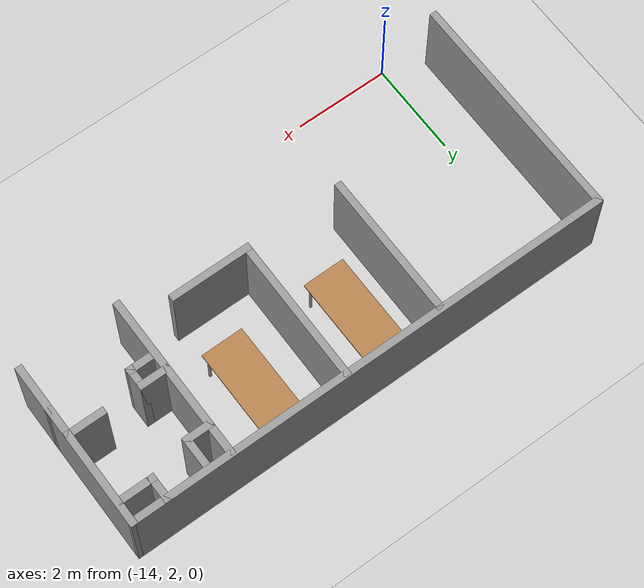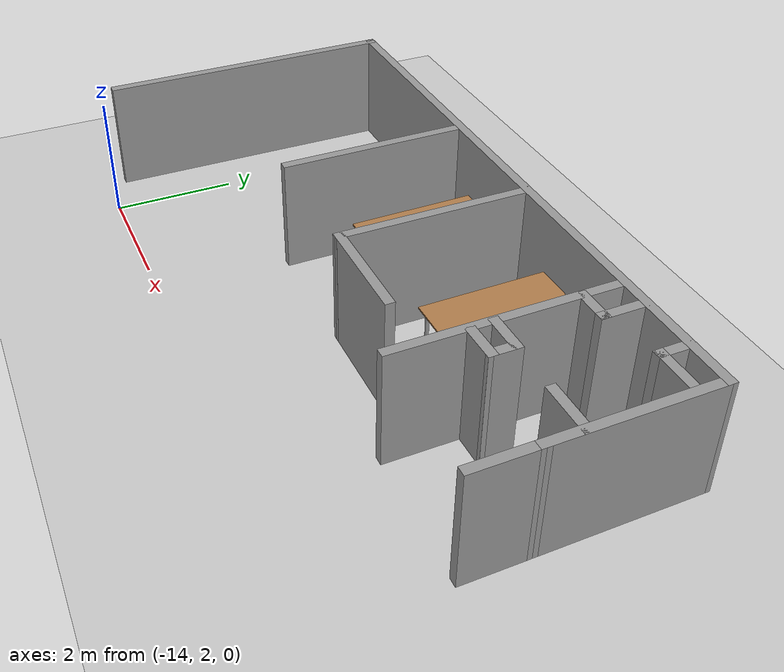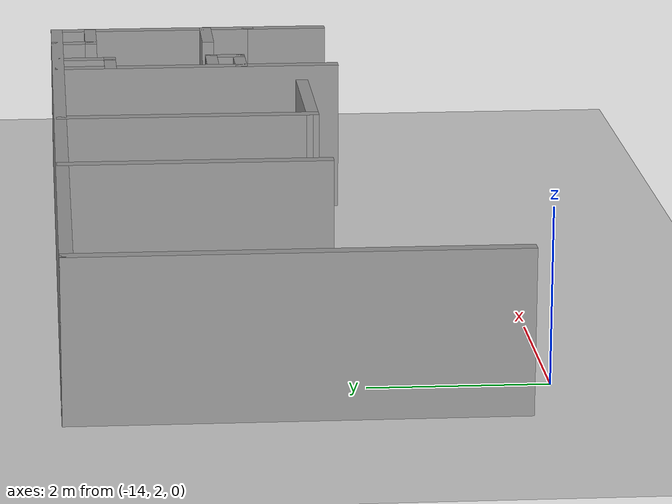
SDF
<sdf version="1.7">
 <world name="default">
  <model name="meeting_room_table_0_clone_clone_clone">
   <link name="link">
    <inertial>
     <inertia><ixx>0</ixx><ixy>0</ixy><ixz>0</ixz><iyy>0</iyy><iyz>0</iyz><izz>0</izz></inertia>
     <mass>0</mass>
    </inertial>
    <visual name="visual1">
     <pose>0 0 0.84 0 -0 0</pose>
     <geometry><box><size>2.07185 0.892487 0.025485</size></box></geometry>
     <material>
      <script><uri>file://media/materials/scripts/gazebo.material</uri><name>Gazebo/Wood</name></script>
      <shader type="pixel"><normal_map>__default__</normal_map></shader>
      <ambient>1 1 1 1</ambient>
      <diffuse>1 1 1 1</diffuse>
      <specular>0.2 0.2 0.2 1</specular>
      <emissive>0 0 0 1</emissive>
     </material>
    </visual>
    <visual name="front_right_leg">
     <pose>0.92 -0.38 0.42 0 -0 0</pose>
     <geometry><cylinder><radius>0.0301928</radius><length>0.822541</length></cylinder></geometry>
     <material>
      <script><uri>file://media/materials/scripts/gazebo.material</uri><name>Gazebo/Grey</name></script>
      <shader type="pixel"><normal_map>__default__</normal_map></shader>
      <ambient>0.3 0.3 0.3 1</ambient>
      <diffuse>0.7 0.7 0.7 1</diffuse>
      <specular>0.01 0.01 0.01 1</specular>
      <emissive>0 0 0 1</emissive>
     </material>
    </visual>
    <visual name="front_left_leg">
     <pose>0.92 0.38 0.42 0 -0 0</pose>
     <geometry><cylinder><radius>0.0301928</radius><length>0.822541</length></cylinder></geometry>
     <material>
      <script><uri>file://media/materials/scripts/gazebo.material</uri><name>Gazebo/Grey</name></script>
      <shader type="pixel"><normal_map>__default__</normal_map></shader>
      <ambient>0.3 0.3 0.3 1</ambient>
      <diffuse>0.7 0.7 0.7 1</diffuse>
      <specular>0.01 0.01 0.01 1</specular>
      <emissive>0 0 0 1</emissive>
     </material>
    </visual>
    <visual name="back_left_leg">
     <pose>-0.92 0.38 0.42 0 -0 0</pose>
     <geometry><cylinder><radius>0.0301928</radius><length>0.822541</length></cylinder></geometry>
     <material>
      <script><uri>file://media/materials/scripts/gazebo.material</uri><name>Gazebo/Grey</name></script>
      <shader type="pixel"><normal_map>__default__</normal_map></shader>
      <ambient>0.3 0.3 0.3 1</ambient>
      <diffuse>0.7 0.7 0.7 1</diffuse>
      <specular>0.01 0.01 0.01 1</specular>
      <emissive>0 0 0 1</emissive>
     </material>
    </visual>
    <visual name="back_right_leg">
     <pose>-0.92 -0.38 0.42 0 -0 0</pose>
     <geometry><cylinder><radius>0.0301928</radius><length>0.822541</length></cylinder></geometry>
     <material>
      <script><uri>file://media/materials/scripts/gazebo.material</uri><name>Gazebo/Grey</name></script>
      <shader type="pixel"><normal_map>__default__</normal_map></shader>
      <ambient>0.3 0.3 0.3 1</ambient>
      <diffuse>0.7 0.7 0.7 1</diffuse>
      <specular>0.01 0.01 0.01 1</specular>
      <emissive>0 0 0 1</emissive>
     </material>
    </visual>
    <collision name="surface">
     <pose>0 0 0.84 0 -0 0</pose>
     <geometry><box><size>2.07185 0.892487 0.025485</size></box></geometry>
     <surface>
      <friction>
       <ode><mu>0.6</mu><mu2>0.6</mu2><fdir1>0 0 0</fdir1><slip1>0</slip1><slip2>0</slip2></ode>
       <torsional>
        <coefficient>1</coefficient>
        <patch_radius>0</patch_radius>
        <surface_radius>0</surface_radius>
        <use_patch_radius>1</use_patch_radius>
        <ode><slip>0</slip></ode>
       </torsional>
      </friction>
      <bounce><restitution_coefficient>0</restitution_coefficient><threshold>1e+06</threshold></bounce>
      <contact>
       <collide_without_contact>0</collide_without_contact>
       <collide_without_contact_bitmask>1</collide_without_contact_bitmask>
       <collide_bitmask>1</collide_bitmask>
       <ode>
        <soft_cfm>0</soft_cfm>
        <soft_erp>0.2</soft_erp>
        <kp>1e+13</kp>
        <kd>1</kd>
        <max_vel>0.01</max_vel>
        <min_depth>0</min_depth>
       </ode>
       <bullet>
        <split_impulse>1</split_impulse>
        <split_impulse_penetration_threshold>-0.01</split_impulse_penetration_threshold>
        <soft_cfm>0</soft_cfm>
        <soft_erp>0.2</soft_erp>
        <kp>1e+13</kp>
        <kd>1</kd>
       </bullet>
      </contact>
     </surface>
    </collision>
    <collision name="front_left_leg">
     <pose>0.92 0.38 0.42 0 -0 0</pose>
     <geometry><cylinder><radius>0.030193</radius><length>0.822541</length></cylinder></geometry>
     <surface>
      <friction>
       <ode><mu>1</mu><mu2>1</mu2><fdir1>0 0 0</fdir1><slip1>0</slip1><slip2>0</slip2></ode>
       <torsional>
        <coefficient>1</coefficient>
        <patch_radius>0</patch_radius>
        <surface_radius>0</surface_radius>
        <use_patch_radius>1</use_patch_radius>
        <ode><slip>0</slip></ode>
       </torsional>
      </friction>
      <bounce><restitution_coefficient>0</restitution_coefficient><threshold>1e+06</threshold></bounce>
      <contact>
       <collide_without_contact>0</collide_without_contact>
       <collide_without_contact_bitmask>1</collide_without_contact_bitmask>
       <collide_bitmask>1</collide_bitmask>
       <ode>
        <soft_cfm>0</soft_cfm>
        <soft_erp>0.2</soft_erp>
        <kp>1e+13</kp>
        <kd>1</kd>
        <max_vel>0.01</max_vel>
        <min_depth>0</min_depth>
       </ode>
       <bullet>
        <split_impulse>1</split_impulse>
        <split_impulse_penetration_threshold>-0.01</split_impulse_penetration_threshold>
        <soft_cfm>0</soft_cfm>
        <soft_erp>0.2</soft_erp>
        <kp>1e+13</kp>
        <kd>1</kd>
       </bullet>
      </contact>
     </surface>
    </collision>
    <collision name="front_right_leg">
     <pose>0.92 -0.38 0.42 0 -0 0</pose>
     <geometry><cylinder><radius>0.030193</radius><length>0.822541</length></cylinder></geometry>
     <surface>
      <friction>
       <ode><mu>1</mu><mu2>1</mu2><fdir1>0 0 0</fdir1><slip1>0</slip1><slip2>0</slip2></ode>
       <torsional>
        <coefficient>1</coefficient>
        <patch_radius>0</patch_radius>
        <surface_radius>0</surface_radius>
        <use_patch_radius>1</use_patch_radius>
        <ode><slip>0</slip></ode>
       </torsional>
      </friction>
      <bounce><restitution_coefficient>0</restitution_coefficient><threshold>1e+06</threshold></bounce>
      <contact>
       <collide_without_contact>0</collide_without_contact>
       <collide_without_contact_bitmask>1</collide_without_contact_bitmask>
       <collide_bitmask>1</collide_bitmask>
       <ode>
        <soft_cfm>0</soft_cfm>
        <soft_erp>0.2</soft_erp>
        <kp>1e+13</kp>
        <kd>1</kd>
        <max_vel>0.01</max_vel>
        <min_depth>0</min_depth>
       </ode>
       <bullet>
        <split_impulse>1</split_impulse>
        <split_impulse_penetration_threshold>-0.01</split_impulse_penetration_threshold>
        <soft_cfm>0</soft_cfm>
        <soft_erp>0.2</soft_erp>
        <kp>1e+13</kp>
        <kd>1</kd>
       </bullet>
      </contact>
     </surface>
    </collision>
    <collision name="back_right_leg">
     <pose>-0.92 -0.38 0.42 0 -0 0</pose>
     <geometry><cylinder><radius>0.030193</radius><length>0.822541</length></cylinder></geometry>
     <surface>
      <friction>
       <ode><mu>1</mu><mu2>1</mu2><fdir1>0 0 0</fdir1><slip1>0</slip1><slip2>0</slip2></ode>
       <torsional>
        <coefficient>1</coefficient>
        <patch_radius>0</patch_radius>
        <surface_radius>0</surface_radius>
        <use_patch_radius>1</use_patch_radius>
        <ode><slip>0</slip></ode>
       </torsional>
      </friction>
      <bounce><restitution_coefficient>0</restitution_coefficient><threshold>1e+06</threshold></bounce>
      <contact>
       <collide_without_contact>0</collide_without_contact>
       <collide_without_contact_bitmask>1</collide_without_contact_bitmask>
       <collide_bitmask>1</collide_bitmask>
       <ode>
        <soft_cfm>0</soft_cfm>
        <soft_erp>0.2</soft_erp>
        <kp>1e+13</kp>
        <kd>1</kd>
        <max_vel>0.01</max_vel>
        <min_depth>0</min_depth>
       </ode>
       <bullet>
        <split_impulse>1</split_impulse>
        <split_impulse_penetration_threshold>-0.01</split_impulse_penetration_threshold>
        <soft_cfm>0</soft_cfm>
        <soft_erp>0.2</soft_erp>
        <kp>1e+13</kp>
        <kd>1</kd>
       </bullet>
      </contact>
     </surface>
    </collision>
    <collision name="back_left_leg">
     <pose>-0.92 0.38 0.42 0 -0 0</pose>
     <geometry><cylinder><radius>0.030193</radius><length>0.822541</length></cylinder></geometry>
     <surface>
      <friction>
       <ode><mu>1</mu><mu2>1</mu2><fdir1>0 0 0</fdir1><slip1>0</slip1><slip2>0</slip2></ode>
       <torsional>
        <coefficient>1</coefficient>
        <patch_radius>0</patch_radius>
        <surface_radius>0</surface_radius>
        <use_patch_radius>1</use_patch_radius>
        <ode><slip>0</slip></ode>
       </torsional>
      </friction>
      <bounce><restitution_coefficient>0</restitution_coefficient><threshold>1e+06</threshold></bounce>
      <contact>
       <collide_without_contact>0</collide_without_contact>
       <collide_without_contact_bitmask>1</collide_without_contact_bitmask>
       <collide_bitmask>1</collide_bitmask>
       <ode>
        <soft_cfm>0</soft_cfm>
        <soft_erp>0.2</soft_erp>
        <kp>1e+13</kp>
        <kd>1</kd>
        <max_vel>0.01</max_vel>
        <min_depth>0</min_depth>
       </ode>
       <bullet>
        <split_impulse>1</split_impulse>
        <split_impulse_penetration_threshold>-0.01</split_impulse_penetration_threshold>
        <soft_cfm>0</soft_cfm>
        <soft_erp>0.2</soft_erp>
        <kp>1e+13</kp>
        <kd>1</kd>
       </bullet>
      </contact>
     </surface>
    </collision>
   </link>
   <static>1</static>
   <pose>-10.2929 6.09368 0 0 0 -1.56528</pose>
  </model>
  <model name="meeting_room_table_0_clone_clone_clone_0">
   <link name="link">
    <inertial>
     <inertia><ixx>0</ixx><ixy>0</ixy><ixz>0</ixz><iyy>0</iyy><iyz>0</iyz><izz>0</izz></inertia>
     <mass>0</mass>
    </inertial>
    <visual name="visual1">
     <pose>0 0 0.84 0 -0 0</pose>
     <geometry><box><size>2.07185 0.892487 0.025485</size></box></geometry>
     <material>
      <script><uri>file://media/materials/scripts/gazebo.material</uri><name>Gazebo/Wood</name></script>
      <shader type="pixel"><normal_map>__default__</normal_map></shader>
      <ambient>1 1 1 1</ambient>
      <diffuse>1 1 1 1</diffuse>
      <specular>0.2 0.2 0.2 1</specular>
      <emissive>0 0 0 1</emissive>
     </material>
    </visual>
    <visual name="front_right_leg">
     <pose>0.92 -0.38 0.42 0 -0 0</pose>
     <geometry><cylinder><radius>0.0301928</radius><length>0.822541</length></cylinder></geometry>
     <material>
      <script><uri>file://media/materials/scripts/gazebo.material</uri><name>Gazebo/Grey</name></script>
      <shader type="pixel"><normal_map>__default__</normal_map></shader>
      <ambient>0.3 0.3 0.3 1</ambient>
      <diffuse>0.7 0.7 0.7 1</diffuse>
      <specular>0.01 0.01 0.01 1</specular>
      <emissive>0 0 0 1</emissive>
     </material>
    </visual>
    <visual name="front_left_leg">
     <pose>0.92 0.38 0.42 0 -0 0</pose>
     <geometry><cylinder><radius>0.0301928</radius><length>0.822541</length></cylinder></geometry>
     <material>
      <script><uri>file://media/materials/scripts/gazebo.material</uri><name>Gazebo/Grey</name></script>
      <shader type="pixel"><normal_map>__default__</normal_map></shader>
      <ambient>0.3 0.3 0.3 1</ambient>
      <diffuse>0.7 0.7 0.7 1</diffuse>
      <specular>0.01 0.01 0.01 1</specular>
      <emissive>0 0 0 1</emissive>
     </material>
    </visual>
    <visual name="back_left_leg">
     <pose>-0.92 0.38 0.42 0 -0 0</pose>
     <geometry><cylinder><radius>0.0301928</radius><length>0.822541</length></cylinder></geometry>
     <material>
      <script><uri>file://media/materials/scripts/gazebo.material</uri><name>Gazebo/Grey</name></script>
      <shader type="pixel"><normal_map>__default__</normal_map></shader>
      <ambient>0.3 0.3 0.3 1</ambient>
      <diffuse>0.7 0.7 0.7 1</diffuse>
      <specular>0.01 0.01 0.01 1</specular>
      <emissive>0 0 0 1</emissive>
     </material>
    </visual>
    <visual name="back_right_leg">
     <pose>-0.92 -0.38 0.42 0 -0 0</pose>
     <geometry><cylinder><radius>0.0301928</radius><length>0.822541</length></cylinder></geometry>
     <material>
      <script><uri>file://media/materials/scripts/gazebo.material</uri><name>Gazebo/Grey</name></script>
      <shader type="pixel"><normal_map>__default__</normal_map></shader>
      <ambient>0.3 0.3 0.3 1</ambient>
      <diffuse>0.7 0.7 0.7 1</diffuse>
      <specular>0.01 0.01 0.01 1</specular>
      <emissive>0 0 0 1</emissive>
     </material>
    </visual>
    <collision name="surface">
     <pose>0 0 0.84 0 -0 0</pose>
     <geometry><box><size>2.07185 0.892487 0.025485</size></box></geometry>
     <surface>
      <friction>
       <ode><mu>0.6</mu><mu2>0.6</mu2><fdir1>0 0 0</fdir1><slip1>0</slip1><slip2>0</slip2></ode>
       <torsional>
        <coefficient>1</coefficient>
        <patch_radius>0</patch_radius>
        <surface_radius>0</surface_radius>
        <use_patch_radius>1</use_patch_radius>
        <ode><slip>0</slip></ode>
       </torsional>
      </friction>
      <bounce><restitution_coefficient>0</restitution_coefficient><threshold>1e+06</threshold></bounce>
      <contact>
       <collide_without_contact>0</collide_without_contact>
       <collide_without_contact_bitmask>1</collide_without_contact_bitmask>
       <collide_bitmask>1</collide_bitmask>
       <ode>
        <soft_cfm>0</soft_cfm>
        <soft_erp>0.2</soft_erp>
        <kp>1e+13</kp>
        <kd>1</kd>
        <max_vel>0.01</max_vel>
        <min_depth>0</min_depth>
       </ode>
       <bullet>
        <split_impulse>1</split_impulse>
        <split_impulse_penetration_threshold>-0.01</split_impulse_penetration_threshold>
        <soft_cfm>0</soft_cfm>
        <soft_erp>0.2</soft_erp>
        <kp>1e+13</kp>
        <kd>1</kd>
       </bullet>
      </contact>
     </surface>
    </collision>
    <collision name="front_left_leg">
     <pose>0.92 0.38 0.42 0 -0 0</pose>
     <geometry><cylinder><radius>0.030193</radius><length>0.822541</length></cylinder></geometry>
     <surface>
      <friction>
       <ode><mu>1</mu><mu2>1</mu2><fdir1>0 0 0</fdir1><slip1>0</slip1><slip2>0</slip2></ode>
       <torsional>
        <coefficient>1</coefficient>
        <patch_radius>0</patch_radius>
        <surface_radius>0</surface_radius>
        <use_patch_radius>1</use_patch_radius>
        <ode><slip>0</slip></ode>
       </torsional>
      </friction>
      <bounce><restitution_coefficient>0</restitution_coefficient><threshold>1e+06</threshold></bounce>
      <contact>
       <collide_without_contact>0</collide_without_contact>
       <collide_without_contact_bitmask>1</collide_without_contact_bitmask>
       <collide_bitmask>1</collide_bitmask>
       <ode>
        <soft_cfm>0</soft_cfm>
        <soft_erp>0.2</soft_erp>
        <kp>1e+13</kp>
        <kd>1</kd>
        <max_vel>0.01</max_vel>
        <min_depth>0</min_depth>
       </ode>
       <bullet>
        <split_impulse>1</split_impulse>
        <split_impulse_penetration_threshold>-0.01</split_impulse_penetration_threshold>
        <soft_cfm>0</soft_cfm>
        <soft_erp>0.2</soft_erp>
        <kp>1e+13</kp>
        <kd>1</kd>
       </bullet>
      </contact>
     </surface>
    </collision>
    <collision name="front_right_leg">
     <pose>0.92 -0.38 0.42 0 -0 0</pose>
     <geometry><cylinder><radius>0.030193</radius><length>0.822541</length></cylinder></geometry>
     <surface>
      <friction>
       <ode><mu>1</mu><mu2>1</mu2><fdir1>0 0 0</fdir1><slip1>0</slip1><slip2>0</slip2></ode>
       <torsional>
        <coefficient>1</coefficient>
        <patch_radius>0</patch_radius>
        <surface_radius>0</surface_radius>
        <use_patch_radius>1</use_patch_radius>
        <ode><slip>0</slip></ode>
       </torsional>
      </friction>
      <bounce><restitution_coefficient>0</restitution_coefficient><threshold>1e+06</threshold></bounce>
      <contact>
       <collide_without_contact>0</collide_without_contact>
       <collide_without_contact_bitmask>1</collide_without_contact_bitmask>
       <collide_bitmask>1</collide_bitmask>
       <ode>
        <soft_cfm>0</soft_cfm>
        <soft_erp>0.2</soft_erp>
        <kp>1e+13</kp>
        <kd>1</kd>
        <max_vel>0.01</max_vel>
        <min_depth>0</min_depth>
       </ode>
       <bullet>
        <split_impulse>1</split_impulse>
        <split_impulse_penetration_threshold>-0.01</split_impulse_penetration_threshold>
        <soft_cfm>0</soft_cfm>
        <soft_erp>0.2</soft_erp>
        <kp>1e+13</kp>
        <kd>1</kd>
       </bullet>
      </contact>
     </surface>
    </collision>
    <collision name="back_right_leg">
     <pose>-0.92 -0.38 0.42 0 -0 0</pose>
     <geometry><cylinder><radius>0.030193</radius><length>0.822541</length></cylinder></geometry>
     <surface>
      <friction>
       <ode><mu>1</mu><mu2>1</mu2><fdir1>0 0 0</fdir1><slip1>0</slip1><slip2>0</slip2></ode>
       <torsional>
        <coefficient>1</coefficient>
        <patch_radius>0</patch_radius>
        <surface_radius>0</surface_radius>
        <use_patch_radius>1</use_patch_radius>
        <ode><slip>0</slip></ode>
       </torsional>
      </friction>
      <bounce><restitution_coefficient>0</restitution_coefficient><threshold>1e+06</threshold></bounce>
      <contact>
       <collide_without_contact>0</collide_without_contact>
       <collide_without_contact_bitmask>1</collide_without_contact_bitmask>
       <collide_bitmask>1</collide_bitmask>
       <ode>
        <soft_cfm>0</soft_cfm>
        <soft_erp>0.2</soft_erp>
        <kp>1e+13</kp>
        <kd>1</kd>
        <max_vel>0.01</max_vel>
        <min_depth>0</min_depth>
       </ode>
       <bullet>
        <split_impulse>1</split_impulse>
        <split_impulse_penetration_threshold>-0.01</split_impulse_penetration_threshold>
        <soft_cfm>0</soft_cfm>
        <soft_erp>0.2</soft_erp>
        <kp>1e+13</kp>
        <kd>1</kd>
       </bullet>
      </contact>
     </surface>
    </collision>
    <collision name="back_left_leg">
     <pose>-0.92 0.38 0.42 0 -0 0</pose>
     <geometry><cylinder><radius>0.030193</radius><length>0.822541</length></cylinder></geometry>
     <surface>
      <friction>
       <ode><mu>1</mu><mu2>1</mu2><fdir1>0 0 0</fdir1><slip1>0</slip1><slip2>0</slip2></ode>
       <torsional>
        <coefficient>1</coefficient>
        <patch_radius>0</patch_radius>
        <surface_radius>0</surface_radius>
        <use_patch_radius>1</use_patch_radius>
        <ode><slip>0</slip></ode>
       </torsional>
      </friction>
      <bounce><restitution_coefficient>0</restitution_coefficient><threshold>1e+06</threshold></bounce>
      <contact>
       <collide_without_contact>0</collide_without_contact>
       <collide_without_contact_bitmask>1</collide_without_contact_bitmask>
       <collide_bitmask>1</collide_bitmask>
       <ode>
        <soft_cfm>0</soft_cfm>
        <soft_erp>0.2</soft_erp>
        <kp>1e+13</kp>
        <kd>1</kd>
        <max_vel>0.01</max_vel>
        <min_depth>0</min_depth>
       </ode>
       <bullet>
        <split_impulse>1</split_impulse>
        <split_impulse_penetration_threshold>-0.01</split_impulse_penetration_threshold>
        <soft_cfm>0</soft_cfm>
        <soft_erp>0.2</soft_erp>
        <kp>1e+13</kp>
        <kd>1</kd>
       </bullet>
      </contact>
     </surface>
    </collision>
   </link>
   <static>1</static>
   <pose>-7.9827 6.11167 0 0 0 -1.56528</pose>
  </model>
  <model name="ground_plane">
   <static>1</static>
   <link name="link">
    <collision name="collision">
     <geometry><plane><normal>0 0 1</normal><size>100 100</size></plane></geometry>
     <surface>
      <contact><collide_bitmask>65535</collide_bitmask></contact>
      <friction><ode><mu>100</mu><mu2>50</mu2></ode></friction>
     </surface>
    </collision>
    <visual name="visual">
     <cast_shadows>0</cast_shadows>
     <geometry><plane><normal>0 0 1</normal><size>100 100</size></plane></geometry>
     <material>
      <script><uri>file://media/materials/scripts/gazebo.material</uri><name>Gazebo/Grey</name></script>
     </material>
    </visual>
   </link>
  </model>
  <model name="HQ_0">
   <link name="Wall_1">
    <pose>-9.81185 7.21089 0 0 -0 0.000157</pose>
    <visual name="Wall_1_Visual">
     <pose>0 0 1.25 0 -0 0</pose>
     <geometry><box><size>10.3981 0.15 2</size></box></geometry>
     <material>
      <script><uri>file://media/materials/scripts/gazebo.material</uri><name>Gazebo/Grey</name></script>
      <ambient>1 1 1 1</ambient>
      <shader type="pixel"/>
     </material>
     <meta><layer>0</layer></meta>
    </visual>
    <collision name="Wall_1_Collision">
     <pose>0 0 1.25 0 -0 0</pose>
     <geometry><box><size>10.3981 0.15 2</size></box></geometry>
     <surface>
      <friction>
       <ode><mu>1</mu><mu2>1</mu2><fdir1>0 0 0</fdir1><slip1>0</slip1><slip2>0</slip2></ode>
       <torsional>
        <coefficient>1</coefficient>
        <patch_radius>0</patch_radius>
        <surface_radius>0</surface_radius>
        <use_patch_radius>1</use_patch_radius>
        <ode><slip>0</slip></ode>
       </torsional>
      </friction>
      <bounce><restitution_coefficient>0</restitution_coefficient><threshold>1e+06</threshold></bounce>
      <contact>
       <collide_without_contact>0</collide_without_contact>
       <collide_without_contact_bitmask>1</collide_without_contact_bitmask>
       <collide_bitmask>1</collide_bitmask>
       <ode>
        <soft_cfm>0</soft_cfm>
        <soft_erp>0.2</soft_erp>
        <kp>1e+13</kp>
        <kd>1</kd>
        <max_vel>0.01</max_vel>
        <min_depth>0</min_depth>
       </ode>
       <bullet>
        <split_impulse>1</split_impulse>
        <split_impulse_penetration_threshold>-0.01</split_impulse_penetration_threshold>
        <soft_cfm>0</soft_cfm>
        <soft_erp>0.2</soft_erp>
        <kp>1e+13</kp>
        <kd>1</kd>
       </bullet>
      </contact>
     </surface>
    </collision>
   </link>
   <link name="Wall_100">
    <pose>-6.48912 5.25147 0 0 -0 3.14159</pose>
    <visual name="Wall_100_Visual">
     <pose>0 0 1.25 0 -0 0</pose>
     <geometry><box><size>0.657 0.15 2</size></box></geometry>
     <material>
      <script><uri>file://media/materials/scripts/gazebo.material</uri><name>Gazebo/Grey</name></script>
      <ambient>1 1 1 1</ambient>
      <shader type="pixel"/>
     </material>
     <meta><layer>0</layer></meta>
    </visual>
    <collision name="Wall_100_Collision">
     <pose>0 0 1.25 0 -0 0</pose>
     <geometry><box><size>0.657 0.15 2</size></box></geometry>
     <surface>
      <friction>
       <ode><mu>1</mu><mu2>1</mu2><fdir1>0 0 0</fdir1><slip1>0</slip1><slip2>0</slip2></ode>
       <torsional>
        <coefficient>1</coefficient>
        <patch_radius>0</patch_radius>
        <surface_radius>0</surface_radius>
        <use_patch_radius>1</use_patch_radius>
        <ode><slip>0</slip></ode>
       </torsional>
      </friction>
      <bounce><restitution_coefficient>0</restitution_coefficient><threshold>1e+06</threshold></bounce>
      <contact>
       <collide_without_contact>0</collide_without_contact>
       <collide_without_contact_bitmask>1</collide_without_contact_bitmask>
       <collide_bitmask>1</collide_bitmask>
       <ode>
        <soft_cfm>0</soft_cfm>
        <soft_erp>0.2</soft_erp>
        <kp>1e+13</kp>
        <kd>1</kd>
        <max_vel>0.01</max_vel>
        <min_depth>0</min_depth>
       </ode>
       <bullet>
        <split_impulse>1</split_impulse>
        <split_impulse_penetration_threshold>-0.01</split_impulse_penetration_threshold>
        <soft_cfm>0</soft_cfm>
        <soft_erp>0.2</soft_erp>
        <kp>1e+13</kp>
        <kd>1</kd>
       </bullet>
      </contact>
     </surface>
    </collision>
   </link>
   <link name="Wall_102">
    <pose>-6.23562 5.07647 0 0 0 -1.5708</pose>
    <visual name="Wall_102_Visual">
     <pose>0 0 1.25 0 -0 0</pose>
     <geometry><box><size>0.5 0.15 2</size></box></geometry>
     <material>
      <script><uri>file://media/materials/scripts/gazebo.material</uri><name>Gazebo/Grey</name></script>
      <ambient>1 1 1 1</ambient>
      <shader type="pixel"/>
     </material>
     <meta><layer>0</layer></meta>
    </visual>
    <collision name="Wall_102_Collision">
     <pose>0 0 1.25 0 -0 0</pose>
     <geometry><box><size>0.5 0.15 2</size></box></geometry>
     <surface>
      <friction>
       <ode><mu>1</mu><mu2>1</mu2><fdir1>0 0 0</fdir1><slip1>0</slip1><slip2>0</slip2></ode>
       <torsional>
        <coefficient>1</coefficient>
        <patch_radius>0</patch_radius>
        <surface_radius>0</surface_radius>
        <use_patch_radius>1</use_patch_radius>
        <ode><slip>0</slip></ode>
       </torsional>
      </friction>
      <bounce><restitution_coefficient>0</restitution_coefficient><threshold>1e+06</threshold></bounce>
      <contact>
       <collide_without_contact>0</collide_without_contact>
       <collide_without_contact_bitmask>1</collide_without_contact_bitmask>
       <collide_bitmask>1</collide_bitmask>
       <ode>
        <soft_cfm>0</soft_cfm>
        <soft_erp>0.2</soft_erp>
        <kp>1e+13</kp>
        <kd>1</kd>
        <max_vel>0.01</max_vel>
        <min_depth>0</min_depth>
       </ode>
       <bullet>
        <split_impulse>1</split_impulse>
        <split_impulse_penetration_threshold>-0.01</split_impulse_penetration_threshold>
        <soft_cfm>0</soft_cfm>
        <soft_erp>0.2</soft_erp>
        <kp>1e+13</kp>
        <kd>1</kd>
       </bullet>
      </contact>
     </surface>
    </collision>
   </link>
   <link name="Wall_103">
    <pose>-6.49487 4.89822 0 0 0 -3.12906</pose>
    <visual name="Wall_103_Visual">
     <pose>0 0 1.25 0 -0 0</pose>
     <geometry><box><size>0.668524 0.15 2</size></box></geometry>
     <material>
      <script><uri>file://media/materials/scripts/gazebo.material</uri><name>Gazebo/Grey</name></script>
      <ambient>1 1 1 1</ambient>
      <shader type="pixel"/>
     </material>
     <meta><layer>0</layer></meta>
    </visual>
    <collision name="Wall_103_Collision">
     <pose>0 0 1.25 0 -0 0</pose>
     <geometry><box><size>0.668524 0.15 2</size></box></geometry>
     <surface>
      <friction>
       <ode><mu>1</mu><mu2>1</mu2><fdir1>0 0 0</fdir1><slip1>0</slip1><slip2>0</slip2></ode>
       <torsional>
        <coefficient>1</coefficient>
        <patch_radius>0</patch_radius>
        <surface_radius>0</surface_radius>
        <use_patch_radius>1</use_patch_radius>
        <ode><slip>0</slip></ode>
       </torsional>
      </friction>
      <bounce><restitution_coefficient>0</restitution_coefficient><threshold>1e+06</threshold></bounce>
      <contact>
       <collide_without_contact>0</collide_without_contact>
       <collide_without_contact_bitmask>1</collide_without_contact_bitmask>
       <collide_bitmask>1</collide_bitmask>
       <ode>
        <soft_cfm>0</soft_cfm>
        <soft_erp>0.2</soft_erp>
        <kp>1e+13</kp>
        <kd>1</kd>
        <max_vel>0.01</max_vel>
        <min_depth>0</min_depth>
       </ode>
       <bullet>
        <split_impulse>1</split_impulse>
        <split_impulse_penetration_threshold>-0.01</split_impulse_penetration_threshold>
        <soft_cfm>0</soft_cfm>
        <soft_erp>0.2</soft_erp>
        <kp>1e+13</kp>
        <kd>1</kd>
       </bullet>
      </contact>
     </surface>
    </collision>
   </link>
   <link name="Wall_105">
    <pose>-6.52412 6.55097 0 0 -0 0</pose>
    <visual name="Wall_105_Visual">
     <pose>0 0 1.25 0 -0 0</pose>
     <geometry><box><size>0.61 0.15 2</size></box></geometry>
     <material>
      <script><uri>file://media/materials/scripts/gazebo.material</uri><name>Gazebo/Grey</name></script>
      <ambient>1 1 1 1</ambient>
      <shader type="pixel"/>
     </material>
     <meta><layer>0</layer></meta>
    </visual>
    <collision name="Wall_105_Collision">
     <pose>0 0 1.25 0 -0 0</pose>
     <geometry><box><size>0.61 0.15 2</size></box></geometry>
     <surface>
      <friction>
       <ode><mu>1</mu><mu2>1</mu2><fdir1>0 0 0</fdir1><slip1>0</slip1><slip2>0</slip2></ode>
       <torsional>
        <coefficient>1</coefficient>
        <patch_radius>0</patch_radius>
        <surface_radius>0</surface_radius>
        <use_patch_radius>1</use_patch_radius>
        <ode><slip>0</slip></ode>
       </torsional>
      </friction>
      <bounce><restitution_coefficient>0</restitution_coefficient><threshold>1e+06</threshold></bounce>
      <contact>
       <collide_without_contact>0</collide_without_contact>
       <collide_without_contact_bitmask>1</collide_without_contact_bitmask>
       <collide_bitmask>1</collide_bitmask>
       <ode>
        <soft_cfm>0</soft_cfm>
        <soft_erp>0.2</soft_erp>
        <kp>1e+13</kp>
        <kd>1</kd>
        <max_vel>0.01</max_vel>
        <min_depth>0</min_depth>
       </ode>
       <bullet>
        <split_impulse>1</split_impulse>
        <split_impulse_penetration_threshold>-0.01</split_impulse_penetration_threshold>
        <soft_cfm>0</soft_cfm>
        <soft_erp>0.2</soft_erp>
        <kp>1e+13</kp>
        <kd>1</kd>
       </bullet>
      </contact>
     </surface>
    </collision>
   </link>
   <link name="Wall_106">
    <pose>-6.29412 6.83847 0 0 -0 1.5708</pose>
    <visual name="Wall_106_Visual">
     <pose>0 0 1.25 0 -0 0</pose>
     <geometry><box><size>0.725115 0.15 2</size></box></geometry>
     <material>
      <script><uri>file://media/materials/scripts/gazebo.material</uri><name>Gazebo/Grey</name></script>
      <ambient>1 1 1 1</ambient>
      <shader type="pixel"/>
     </material>
     <meta><layer>0</layer></meta>
    </visual>
    <collision name="Wall_106_Collision">
     <pose>0 0 1.25 0 -0 0</pose>
     <geometry><box><size>0.725115 0.15 2</size></box></geometry>
     <surface>
      <friction>
       <ode><mu>1</mu><mu2>1</mu2><fdir1>0 0 0</fdir1><slip1>0</slip1><slip2>0</slip2></ode>
       <torsional>
        <coefficient>1</coefficient>
        <patch_radius>0</patch_radius>
        <surface_radius>0</surface_radius>
        <use_patch_radius>1</use_patch_radius>
        <ode><slip>0</slip></ode>
       </torsional>
      </friction>
      <bounce><restitution_coefficient>0</restitution_coefficient><threshold>1e+06</threshold></bounce>
      <contact>
       <collide_without_contact>0</collide_without_contact>
       <collide_without_contact_bitmask>1</collide_without_contact_bitmask>
       <collide_bitmask>1</collide_bitmask>
       <ode>
        <soft_cfm>0</soft_cfm>
        <soft_erp>0.2</soft_erp>
        <kp>1e+13</kp>
        <kd>1</kd>
        <max_vel>0.01</max_vel>
        <min_depth>0</min_depth>
       </ode>
       <bullet>
        <split_impulse>1</split_impulse>
        <split_impulse_penetration_threshold>-0.01</split_impulse_penetration_threshold>
        <soft_cfm>0</soft_cfm>
        <soft_erp>0.2</soft_erp>
        <kp>1e+13</kp>
        <kd>1</kd>
       </bullet>
      </contact>
     </surface>
    </collision>
   </link>
   <link name="Wall_108">
    <pose>-9.25537 5.68847 0 0 0 -1.57464</pose>
    <visual name="Wall_108_Visual">
     <pose>0 0 1.25 0 -0 0</pose>
     <geometry><box><size>3.14002 0.15 2</size></box></geometry>
     <material>
      <script><uri>file://media/materials/scripts/gazebo.material</uri><name>Gazebo/Grey</name></script>
      <ambient>1 1 1 1</ambient>
      <shader type="pixel"/>
     </material>
     <meta><layer>0</layer></meta>
    </visual>
    <collision name="Wall_108_Collision">
     <pose>0 0 1.25 0 -0 0</pose>
     <geometry><box><size>3.14002 0.15 2</size></box></geometry>
     <surface>
      <friction>
       <ode><mu>1</mu><mu2>1</mu2><fdir1>0 0 0</fdir1><slip1>0</slip1><slip2>0</slip2></ode>
       <torsional>
        <coefficient>1</coefficient>
        <patch_radius>0</patch_radius>
        <surface_radius>0</surface_radius>
        <use_patch_radius>1</use_patch_radius>
        <ode><slip>0</slip></ode>
       </torsional>
      </friction>
      <bounce><restitution_coefficient>0</restitution_coefficient><threshold>1e+06</threshold></bounce>
      <contact>
       <collide_without_contact>0</collide_without_contact>
       <collide_without_contact_bitmask>1</collide_without_contact_bitmask>
       <collide_bitmask>1</collide_bitmask>
       <ode>
        <soft_cfm>0</soft_cfm>
        <soft_erp>0.2</soft_erp>
        <kp>1e+13</kp>
        <kd>1</kd>
        <max_vel>0.01</max_vel>
        <min_depth>0</min_depth>
       </ode>
       <bullet>
        <split_impulse>1</split_impulse>
        <split_impulse_penetration_threshold>-0.01</split_impulse_penetration_threshold>
        <soft_cfm>0</soft_cfm>
        <soft_erp>0.2</soft_erp>
        <kp>1e+13</kp>
        <kd>1</kd>
       </bullet>
      </contact>
     </surface>
    </collision>
   </link>
   <link name="Wall_109">
    <pose>-8.46112 4.19347 0 0 -0 0</pose>
    <visual name="Wall_109_Visual">
     <pose>0 0 1.25 0 -0 0</pose>
     <geometry><box><size>1.75 0.15 2</size></box></geometry>
     <material>
      <script><uri>file://media/materials/scripts/gazebo.material</uri><name>Gazebo/Grey</name></script>
      <ambient>1 1 1 1</ambient>
      <shader type="pixel"/>
     </material>
     <meta><layer>0</layer></meta>
    </visual>
    <collision name="Wall_109_Collision">
     <pose>0 0 1.25 0 -0 0</pose>
     <geometry><box><size>1.75 0.15 2</size></box></geometry>
     <surface>
      <friction>
       <ode><mu>1</mu><mu2>1</mu2><fdir1>0 0 0</fdir1><slip1>0</slip1><slip2>0</slip2></ode>
       <torsional>
        <coefficient>1</coefficient>
        <patch_radius>0</patch_radius>
        <surface_radius>0</surface_radius>
        <use_patch_radius>1</use_patch_radius>
        <ode><slip>0</slip></ode>
       </torsional>
      </friction>
      <bounce><restitution_coefficient>0</restitution_coefficient><threshold>1e+06</threshold></bounce>
      <contact>
       <collide_without_contact>0</collide_without_contact>
       <collide_without_contact_bitmask>1</collide_without_contact_bitmask>
       <collide_bitmask>1</collide_bitmask>
       <ode>
        <soft_cfm>0</soft_cfm>
        <soft_erp>0.2</soft_erp>
        <kp>1e+13</kp>
        <kd>1</kd>
        <max_vel>0.01</max_vel>
        <min_depth>0</min_depth>
       </ode>
       <bullet>
        <split_impulse>1</split_impulse>
        <split_impulse_penetration_threshold>-0.01</split_impulse_penetration_threshold>
        <soft_cfm>0</soft_cfm>
        <soft_erp>0.2</soft_erp>
        <kp>1e+13</kp>
        <kd>1</kd>
       </bullet>
      </contact>
     </surface>
    </collision>
   </link>
   <link name="Wall_114">
    <pose>-11.3541 5.69422 0 0 -0 1.5708</pose>
    <visual name="Wall_114_Visual">
     <pose>0 0 1.25 0 -0 0</pose>
     <geometry><box><size>3.1515 0.15 2</size></box></geometry>
     <material>
      <script><uri>file://media/materials/scripts/gazebo.material</uri><name>Gazebo/Grey</name></script>
      <ambient>1 1 1 1</ambient>
      <shader type="pixel"/>
     </material>
     <meta><layer>0</layer></meta>
    </visual>
    <collision name="Wall_114_Collision">
     <pose>0 0 1.25 0 -0 0</pose>
     <geometry><box><size>3.1515 0.15 2</size></box></geometry>
     <surface>
      <friction>
       <ode><mu>1</mu><mu2>1</mu2><fdir1>0 0 0</fdir1><slip1>0</slip1><slip2>0</slip2></ode>
       <torsional>
        <coefficient>1</coefficient>
        <patch_radius>0</patch_radius>
        <surface_radius>0</surface_radius>
        <use_patch_radius>1</use_patch_radius>
        <ode><slip>0</slip></ode>
       </torsional>
      </friction>
      <bounce><restitution_coefficient>0</restitution_coefficient><threshold>1e+06</threshold></bounce>
      <contact>
       <collide_without_contact>0</collide_without_contact>
       <collide_without_contact_bitmask>1</collide_without_contact_bitmask>
       <collide_bitmask>1</collide_bitmask>
       <ode>
        <soft_cfm>0</soft_cfm>
        <soft_erp>0.2</soft_erp>
        <kp>1e+13</kp>
        <kd>1</kd>
        <max_vel>0.01</max_vel>
        <min_depth>0</min_depth>
       </ode>
       <bullet>
        <split_impulse>1</split_impulse>
        <split_impulse_penetration_threshold>-0.01</split_impulse_penetration_threshold>
        <soft_cfm>0</soft_cfm>
        <soft_erp>0.2</soft_erp>
        <kp>1e+13</kp>
        <kd>1</kd>
       </bullet>
      </contact>
     </surface>
    </collision>
   </link>
   <link name="Wall_237">
    <pose>-5.40371 6.99084 0 0 0 -1.5708</pose>
    <visual name="Wall_237_Visual">
     <pose>0 0 1.25 0 -0 0</pose>
     <geometry><box><size>0.584783 0.15 2</size></box></geometry>
     <material>
      <script><uri>file://media/materials/scripts/gazebo.material</uri><name>Gazebo/Grey</name></script>
      <ambient>1 1 1 1</ambient>
      <shader type="pixel"/>
     </material>
     <meta><layer>0</layer></meta>
    </visual>
    <collision name="Wall_237_Collision">
     <pose>0 0 1.25 0 -0 0</pose>
     <geometry><box><size>0.584783 0.15 2</size></box></geometry>
     <surface>
      <friction>
       <ode><mu>1</mu><mu2>1</mu2><fdir1>0 0 0</fdir1><slip1>0</slip1><slip2>0</slip2></ode>
       <torsional>
        <coefficient>1</coefficient>
        <patch_radius>0</patch_radius>
        <surface_radius>0</surface_radius>
        <use_patch_radius>1</use_patch_radius>
        <ode><slip>0</slip></ode>
       </torsional>
      </friction>
      <bounce><restitution_coefficient>0</restitution_coefficient><threshold>1e+06</threshold></bounce>
      <contact>
       <collide_without_contact>0</collide_without_contact>
       <collide_without_contact_bitmask>1</collide_without_contact_bitmask>
       <collide_bitmask>1</collide_bitmask>
       <ode>
        <soft_cfm>0</soft_cfm>
        <soft_erp>0.2</soft_erp>
        <kp>1e+13</kp>
        <kd>1</kd>
        <max_vel>0.01</max_vel>
        <min_depth>0</min_depth>
       </ode>
       <bullet>
        <split_impulse>1</split_impulse>
        <split_impulse_penetration_threshold>-0.01</split_impulse_penetration_threshold>
        <soft_cfm>0</soft_cfm>
        <soft_erp>0.2</soft_erp>
        <kp>1e+13</kp>
        <kd>1</kd>
       </bullet>
      </contact>
     </surface>
    </collision>
   </link>
   <link name="Wall_238">
    <pose>-5.05589 6.77345 0 0 -0 0</pose>
    <visual name="Wall_238_Visual">
     <pose>0 0 1.25 0 -0 0</pose>
     <geometry><box><size>0.84587 0.15 2</size></box></geometry>
     <material>
      <script><uri>file://media/materials/scripts/gazebo.material</uri><name>Gazebo/Grey</name></script>
      <ambient>1 1 1 1</ambient>
      <shader type="pixel"/>
     </material>
     <meta><layer>0</layer></meta>
    </visual>
    <collision name="Wall_238_Collision">
     <pose>0 0 1.25 0 -0 0</pose>
     <geometry><box><size>0.84587 0.15 2</size></box></geometry>
     <surface>
      <friction>
       <ode><mu>1</mu><mu2>1</mu2><fdir1>0 0 0</fdir1><slip1>0</slip1><slip2>0</slip2></ode>
       <torsional>
        <coefficient>1</coefficient>
        <patch_radius>0</patch_radius>
        <surface_radius>0</surface_radius>
        <use_patch_radius>1</use_patch_radius>
        <ode><slip>0</slip></ode>
       </torsional>
      </friction>
      <bounce><restitution_coefficient>0</restitution_coefficient><threshold>1e+06</threshold></bounce>
      <contact>
       <collide_without_contact>0</collide_without_contact>
       <collide_without_contact_bitmask>1</collide_without_contact_bitmask>
       <collide_bitmask>1</collide_bitmask>
       <ode>
        <soft_cfm>0</soft_cfm>
        <soft_erp>0.2</soft_erp>
        <kp>1e+13</kp>
        <kd>1</kd>
        <max_vel>0.01</max_vel>
        <min_depth>0</min_depth>
       </ode>
       <bullet>
        <split_impulse>1</split_impulse>
        <split_impulse_penetration_threshold>-0.01</split_impulse_penetration_threshold>
        <soft_cfm>0</soft_cfm>
        <soft_erp>0.2</soft_erp>
        <kp>1e+13</kp>
        <kd>1</kd>
       </bullet>
      </contact>
     </surface>
    </collision>
   </link>
   <link name="Wall_3">
    <pose>-4.68613 5.95229 0 0 0 -1.56947</pose>
    <visual name="Wall_3_Visual">
     <pose>0 0 1.25 0 -0 0</pose>
     <geometry><box><size>2.66886 0.15 2</size></box></geometry>
     <material>
      <script><uri>file://media/materials/scripts/gazebo.material</uri><name>Gazebo/Grey</name></script>
      <ambient>1 1 1 1</ambient>
      <shader type="pixel"/>
     </material>
     <meta><layer>0</layer></meta>
    </visual>
    <collision name="Wall_3_Collision">
     <pose>0 0 1.25 0 -0 0</pose>
     <geometry><box><size>2.66886 0.15 2</size></box></geometry>
     <surface>
      <friction>
       <ode><mu>1</mu><mu2>1</mu2><fdir1>0 0 0</fdir1><slip1>0</slip1><slip2>0</slip2></ode>
       <torsional>
        <coefficient>1</coefficient>
        <patch_radius>0</patch_radius>
        <surface_radius>0</surface_radius>
        <use_patch_radius>1</use_patch_radius>
        <ode><slip>0</slip></ode>
       </torsional>
      </friction>
      <bounce><restitution_coefficient>0</restitution_coefficient><threshold>1e+06</threshold></bounce>
      <contact>
       <collide_without_contact>0</collide_without_contact>
       <collide_without_contact_bitmask>1</collide_without_contact_bitmask>
       <collide_bitmask>1</collide_bitmask>
       <ode>
        <soft_cfm>0</soft_cfm>
        <soft_erp>0.2</soft_erp>
        <kp>1e+13</kp>
        <kd>1</kd>
        <max_vel>0.01</max_vel>
        <min_depth>0</min_depth>
       </ode>
       <bullet>
        <split_impulse>1</split_impulse>
        <split_impulse_penetration_threshold>-0.01</split_impulse_penetration_threshold>
        <soft_cfm>0</soft_cfm>
        <soft_erp>0.2</soft_erp>
        <kp>1e+13</kp>
        <kd>1</kd>
       </bullet>
      </contact>
     </surface>
    </collision>
   </link>
   <link name="Wall_38">
    <pose>-14.9601 4.79068 0 0 -0 1.5708</pose>
    <visual name="Wall_38_Visual">
     <pose>0 0 1.25 0 -0 0</pose>
     <geometry><box><size>4.97729 0.15 2</size></box></geometry>
     <material>
      <script><uri>file://media/materials/scripts/gazebo.material</uri><name>Gazebo/Grey</name></script>
      <ambient>1 1 1 1</ambient>
      <shader type="pixel"/>
     </material>
     <meta><layer>0</layer></meta>
    </visual>
    <collision name="Wall_38_Collision">
     <pose>0 0 1.25 0 -0 0</pose>
     <geometry><box><size>4.97729 0.15 2</size></box></geometry>
     <surface>
      <friction>
       <ode><mu>1</mu><mu2>1</mu2><fdir1>0 0 0</fdir1><slip1>0</slip1><slip2>0</slip2></ode>
       <torsional>
        <coefficient>1</coefficient>
        <patch_radius>0</patch_radius>
        <surface_radius>0</surface_radius>
        <use_patch_radius>1</use_patch_radius>
        <ode><slip>0</slip></ode>
       </torsional>
      </friction>
      <bounce><restitution_coefficient>0</restitution_coefficient><threshold>1e+06</threshold></bounce>
      <contact>
       <collide_without_contact>0</collide_without_contact>
       <collide_without_contact_bitmask>1</collide_without_contact_bitmask>
       <collide_bitmask>1</collide_bitmask>
       <ode>
        <soft_cfm>0</soft_cfm>
        <soft_erp>0.2</soft_erp>
        <kp>1e+13</kp>
        <kd>1</kd>
        <max_vel>0.01</max_vel>
        <min_depth>0</min_depth>
       </ode>
       <bullet>
        <split_impulse>1</split_impulse>
        <split_impulse_penetration_threshold>-0.01</split_impulse_penetration_threshold>
        <soft_cfm>0</soft_cfm>
        <soft_erp>0.2</soft_erp>
        <kp>1e+13</kp>
        <kd>1</kd>
       </bullet>
      </contact>
     </surface>
    </collision>
   </link>
   <link name="Wall_81">
    <pose>-4.68429 4.21892 0 0 -0 1.57115</pose>
    <visual name="Wall_81_Visual">
     <pose>0 0 1.25 0 -0 0</pose>
     <geometry><box><size>1.0979 0.15 2</size></box></geometry>
     <material>
      <script><uri>file://media/materials/scripts/gazebo.material</uri><name>Gazebo/Grey</name></script>
      <ambient>1 1 1 1</ambient>
      <shader type="pixel"/>
     </material>
     <meta><layer>0</layer></meta>
    </visual>
    <collision name="Wall_81_Collision">
     <pose>0 0 1.25 0 -0 0</pose>
     <geometry><box><size>1.0979 0.15 2</size></box></geometry>
     <surface>
      <friction>
       <ode><mu>1</mu><mu2>1</mu2><fdir1>0 0 0</fdir1><slip1>0</slip1><slip2>0</slip2></ode>
       <torsional>
        <coefficient>1</coefficient>
        <patch_radius>0</patch_radius>
        <surface_radius>0</surface_radius>
        <use_patch_radius>1</use_patch_radius>
        <ode><slip>0</slip></ode>
       </torsional>
      </friction>
      <bounce><restitution_coefficient>0</restitution_coefficient><threshold>1e+06</threshold></bounce>
      <contact>
       <collide_without_contact>0</collide_without_contact>
       <collide_without_contact_bitmask>1</collide_without_contact_bitmask>
       <collide_bitmask>1</collide_bitmask>
       <ode>
        <soft_cfm>0</soft_cfm>
        <soft_erp>0.2</soft_erp>
        <kp>1e+13</kp>
        <kd>1</kd>
        <max_vel>0.01</max_vel>
        <min_depth>0</min_depth>
       </ode>
       <bullet>
        <split_impulse>1</split_impulse>
        <split_impulse_penetration_threshold>-0.01</split_impulse_penetration_threshold>
        <soft_cfm>0</soft_cfm>
        <soft_erp>0.2</soft_erp>
        <kp>1e+13</kp>
        <kd>1</kd>
       </bullet>
      </contact>
     </surface>
    </collision>
   </link>
   <link name="Wall_87">
    <pose>-6.76562 5.45847 0 0 -0 1.5708</pose>
    <visual name="Wall_87_Visual">
     <pose>0 0 1.25 0 -0 0</pose>
     <geometry><box><size>3.577 0.15 2</size></box></geometry>
     <material>
      <script><uri>file://media/materials/scripts/gazebo.material</uri><name>Gazebo/Grey</name></script>
      <ambient>1 1 1 1</ambient>
      <shader type="pixel"/>
     </material>
     <meta><layer>0</layer></meta>
    </visual>
    <collision name="Wall_87_Collision">
     <pose>0 0 1.25 0 -0 0</pose>
     <geometry><box><size>3.577 0.15 2</size></box></geometry>
     <surface>
      <friction>
       <ode><mu>1</mu><mu2>1</mu2><fdir1>0 0 0</fdir1><slip1>0</slip1><slip2>0</slip2></ode>
       <torsional>
        <coefficient>1</coefficient>
        <patch_radius>0</patch_radius>
        <surface_radius>0</surface_radius>
        <use_patch_radius>1</use_patch_radius>
        <ode><slip>0</slip></ode>
       </torsional>
      </friction>
      <bounce><restitution_coefficient>0</restitution_coefficient><threshold>1e+06</threshold></bounce>
      <contact>
       <collide_without_contact>0</collide_without_contact>
       <collide_without_contact_bitmask>1</collide_without_contact_bitmask>
       <collide_bitmask>1</collide_bitmask>
       <ode>
        <soft_cfm>0</soft_cfm>
        <soft_erp>0.2</soft_erp>
        <kp>1e+13</kp>
        <kd>1</kd>
        <max_vel>0.01</max_vel>
        <min_depth>0</min_depth>
       </ode>
       <bullet>
        <split_impulse>1</split_impulse>
        <split_impulse_penetration_threshold>-0.01</split_impulse_penetration_threshold>
        <soft_cfm>0</soft_cfm>
        <soft_erp>0.2</soft_erp>
        <kp>1e+13</kp>
        <kd>1</kd>
       </bullet>
      </contact>
     </surface>
    </collision>
   </link>
   <link name="Wall_94">
    <pose>-5.04062 5.25147 0 0 -0 3.14159</pose>
    <visual name="Wall_94_Visual">
     <pose>0 0 1.25 0 -0 0</pose>
     <geometry><box><size>0.840096 0.15 2</size></box></geometry>
     <material>
      <script><uri>file://media/materials/scripts/gazebo.material</uri><name>Gazebo/Grey</name></script>
      <ambient>1 1 1 1</ambient>
      <shader type="pixel"/>
     </material>
     <meta><layer>0</layer></meta>
    </visual>
    <collision name="Wall_94_Collision">
     <pose>0 0 1.25 0 -0 0</pose>
     <geometry><box><size>0.840096 0.15 2</size></box></geometry>
     <surface>
      <friction>
       <ode><mu>1</mu><mu2>1</mu2><fdir1>0 0 0</fdir1><slip1>0</slip1><slip2>0</slip2></ode>
       <torsional>
        <coefficient>1</coefficient>
        <patch_radius>0</patch_radius>
        <surface_radius>0</surface_radius>
        <use_patch_radius>1</use_patch_radius>
        <ode><slip>0</slip></ode>
       </torsional>
      </friction>
      <bounce><restitution_coefficient>0</restitution_coefficient><threshold>1e+06</threshold></bounce>
      <contact>
       <collide_without_contact>0</collide_without_contact>
       <collide_without_contact_bitmask>1</collide_without_contact_bitmask>
       <collide_bitmask>1</collide_bitmask>
       <ode>
        <soft_cfm>0</soft_cfm>
        <soft_erp>0.2</soft_erp>
        <kp>1e+13</kp>
        <kd>1</kd>
        <max_vel>0.01</max_vel>
        <min_depth>0</min_depth>
       </ode>
       <bullet>
        <split_impulse>1</split_impulse>
        <split_impulse_penetration_threshold>-0.01</split_impulse_penetration_threshold>
        <soft_cfm>0</soft_cfm>
        <soft_erp>0.2</soft_erp>
        <kp>1e+13</kp>
        <kd>1</kd>
       </bullet>
      </contact>
     </surface>
    </collision>
   </link>
   <static>1</static>
   <pose>0.058415 0.010329 -0.412364 0 -0 0</pose>
  </model>
 </world>
</sdf>
